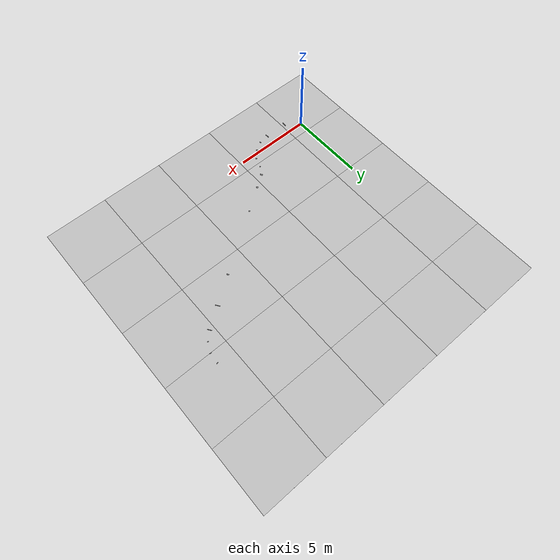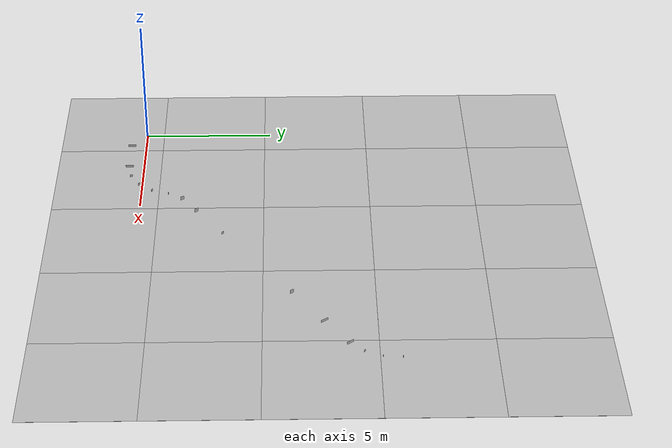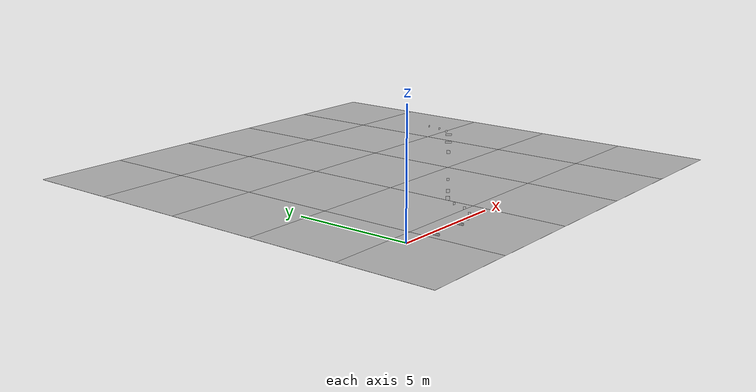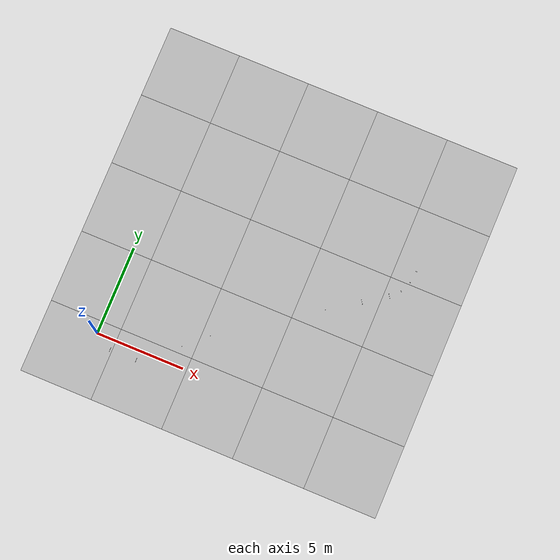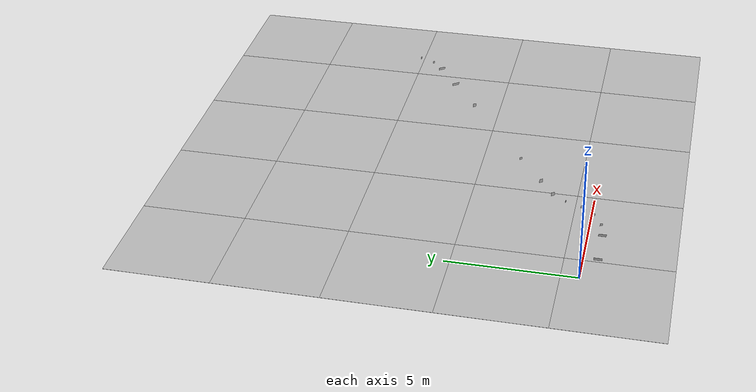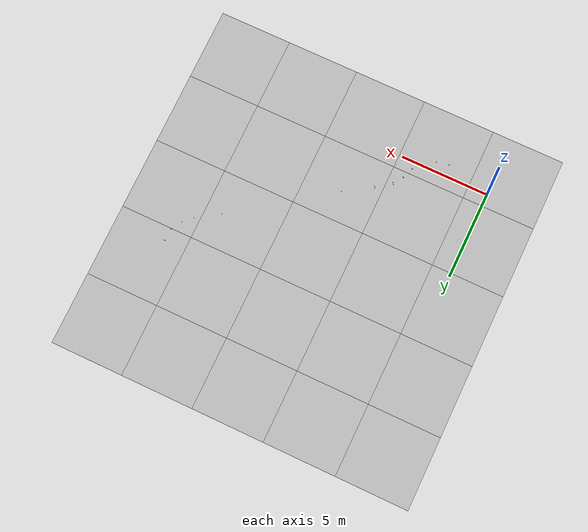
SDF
<sdf version='1.6'><world name='default'>
    <light name='sun_light' type='directional'>
      <pose frame=''>0 0 10 0 -0 0</pose>
      <diffuse>0.5 0.5 0.5 1</diffuse>
      <specular>0.1 0.1 0.1 1</specular>
      <direction>0.1 0.1 -0.9</direction>
      <attenuation>
        <range>20</range>
        <constant>0.5</constant>
        <linear>0.01</linear>
        <quadratic>0.001</quadratic>
      </attenuation>
      <cast_shadows>1</cast_shadows>
    </light>

    <model name='Tile/0-0'>
      <static>1</static>
      <link name='link'>
        <collision name='collision'>
          <geometry>
            <plane>
              <normal>0 0 1</normal>
              <size>4.096 4.096</size>
            </plane>
          </geometry>
          <surface>
            <friction>
              <ode>
                <mu>100</mu>
                <mu2>50</mu2>
              </ode>
              <torsional>
                <ode/>
              </torsional>
            </friction>
            <contact>
              <ode/>
            </contact>
            <bounce/>
          </surface>
          <max_contacts>10</max_contacts>
        </collision>
        <visual name='visual'>
          <cast_shadows>0</cast_shadows>
          <geometry>
            <plane>
              <normal>0 0 1</normal>
              <size>4.096 4.096</size>
            </plane>
          </geometry>
          <material>
            <script>
              <uri>file://materials/scripts</uri>
              <uri>file://materials/textures</uri>
              <name>Tile/d2a0822d2df9434b2a10c1df4b51959f07967b7722c4dc5c94304e16f4e1de29</name>
            </script>
          </material>
        </visual>
        <self_collide>0</self_collide>
        <enable_wind>0</enable_wind>
        <kinematic>0</kinematic>
      </link>
      <pose frame=''>-0.952 -1.3519999999999999 0 0 -0 0</pose>
    </model>

    <model name='Tile/0-1'>
      <static>1</static>
      <link name='link'>
        <collision name='collision'>
          <geometry>
            <plane>
              <normal>0 0 1</normal>
              <size>4.096 4.096</size>
            </plane>
          </geometry>
          <surface>
            <friction>
              <ode>
                <mu>100</mu>
                <mu2>50</mu2>
              </ode>
              <torsional>
                <ode/>
              </torsional>
            </friction>
            <contact>
              <ode/>
            </contact>
            <bounce/>
          </surface>
          <max_contacts>10</max_contacts>
        </collision>
        <visual name='visual'>
          <cast_shadows>0</cast_shadows>
          <geometry>
            <plane>
              <normal>0 0 1</normal>
              <size>4.096 4.096</size>
            </plane>
          </geometry>
          <material>
            <script>
              <uri>file://materials/scripts</uri>
              <uri>file://materials/textures</uri>
              <name>Tile/5eab350b8220ac9944dbdfa4ac3288c7c17e24c3bf5df0dfcf6173d64dae00a1</name>
            </script>
          </material>
        </visual>
        <self_collide>0</self_collide>
        <enable_wind>0</enable_wind>
        <kinematic>0</kinematic>
      </link>
      <pose frame=''>-0.952 2.744 0 0 -0 0</pose>
    </model>

    <model name='Tile/0-2'>
      <static>1</static>
      <link name='link'>
        <collision name='collision'>
          <geometry>
            <plane>
              <normal>0 0 1</normal>
              <size>4.096 4.096</size>
            </plane>
          </geometry>
          <surface>
            <friction>
              <ode>
                <mu>100</mu>
                <mu2>50</mu2>
              </ode>
              <torsional>
                <ode/>
              </torsional>
            </friction>
            <contact>
              <ode/>
            </contact>
            <bounce/>
          </surface>
          <max_contacts>10</max_contacts>
        </collision>
        <visual name='visual'>
          <cast_shadows>0</cast_shadows>
          <geometry>
            <plane>
              <normal>0 0 1</normal>
              <size>4.096 4.096</size>
            </plane>
          </geometry>
          <material>
            <script>
              <uri>file://materials/scripts</uri>
              <uri>file://materials/textures</uri>
              <name>Tile/5eab350b8220ac9944dbdfa4ac3288c7c17e24c3bf5df0dfcf6173d64dae00a1</name>
            </script>
          </material>
        </visual>
        <self_collide>0</self_collide>
        <enable_wind>0</enable_wind>
        <kinematic>0</kinematic>
      </link>
      <pose frame=''>-0.952 6.84 0 0 -0 0</pose>
    </model>

    <model name='Tile/0-3'>
      <static>1</static>
      <link name='link'>
        <collision name='collision'>
          <geometry>
            <plane>
              <normal>0 0 1</normal>
              <size>4.096 4.096</size>
            </plane>
          </geometry>
          <surface>
            <friction>
              <ode>
                <mu>100</mu>
                <mu2>50</mu2>
              </ode>
              <torsional>
                <ode/>
              </torsional>
            </friction>
            <contact>
              <ode/>
            </contact>
            <bounce/>
          </surface>
          <max_contacts>10</max_contacts>
        </collision>
        <visual name='visual'>
          <cast_shadows>0</cast_shadows>
          <geometry>
            <plane>
              <normal>0 0 1</normal>
              <size>4.096 4.096</size>
            </plane>
          </geometry>
          <material>
            <script>
              <uri>file://materials/scripts</uri>
              <uri>file://materials/textures</uri>
              <name>Tile/5eab350b8220ac9944dbdfa4ac3288c7c17e24c3bf5df0dfcf6173d64dae00a1</name>
            </script>
          </material>
        </visual>
        <self_collide>0</self_collide>
        <enable_wind>0</enable_wind>
        <kinematic>0</kinematic>
      </link>
      <pose frame=''>-0.952 10.936 0 0 -0 0</pose>
    </model>

    <model name='Tile/0-4'>
      <static>1</static>
      <link name='link'>
        <collision name='collision'>
          <geometry>
            <plane>
              <normal>0 0 1</normal>
              <size>4.096 4.096</size>
            </plane>
          </geometry>
          <surface>
            <friction>
              <ode>
                <mu>100</mu>
                <mu2>50</mu2>
              </ode>
              <torsional>
                <ode/>
              </torsional>
            </friction>
            <contact>
              <ode/>
            </contact>
            <bounce/>
          </surface>
          <max_contacts>10</max_contacts>
        </collision>
        <visual name='visual'>
          <cast_shadows>0</cast_shadows>
          <geometry>
            <plane>
              <normal>0 0 1</normal>
              <size>4.096 4.096</size>
            </plane>
          </geometry>
          <material>
            <script>
              <uri>file://materials/scripts</uri>
              <uri>file://materials/textures</uri>
              <name>Tile/5eab350b8220ac9944dbdfa4ac3288c7c17e24c3bf5df0dfcf6173d64dae00a1</name>
            </script>
          </material>
        </visual>
        <self_collide>0</self_collide>
        <enable_wind>0</enable_wind>
        <kinematic>0</kinematic>
      </link>
      <pose frame=''>-0.952 15.031999999999998 0 0 -0 0</pose>
    </model>

    <model name='Tile/1-0'>
      <static>1</static>
      <link name='link'>
        <collision name='collision'>
          <geometry>
            <plane>
              <normal>0 0 1</normal>
              <size>4.096 4.096</size>
            </plane>
          </geometry>
          <surface>
            <friction>
              <ode>
                <mu>100</mu>
                <mu2>50</mu2>
              </ode>
              <torsional>
                <ode/>
              </torsional>
            </friction>
            <contact>
              <ode/>
            </contact>
            <bounce/>
          </surface>
          <max_contacts>10</max_contacts>
        </collision>
        <visual name='visual'>
          <cast_shadows>0</cast_shadows>
          <geometry>
            <plane>
              <normal>0 0 1</normal>
              <size>4.096 4.096</size>
            </plane>
          </geometry>
          <material>
            <script>
              <uri>file://materials/scripts</uri>
              <uri>file://materials/textures</uri>
              <name>Tile/eee40ccea9311317126f079acab8a58f75d18f4e68f1ac2bab7b07feca064cc9</name>
            </script>
          </material>
        </visual>
        <self_collide>0</self_collide>
        <enable_wind>0</enable_wind>
        <kinematic>0</kinematic>
      </link>
      <pose frame=''>3.144 -1.3519999999999999 0 0 -0 0</pose>
    </model>

    <model name='Tile/1-1'>
      <static>1</static>
      <link name='link'>
        <collision name='collision'>
          <geometry>
            <plane>
              <normal>0 0 1</normal>
              <size>4.096 4.096</size>
            </plane>
          </geometry>
          <surface>
            <friction>
              <ode>
                <mu>100</mu>
                <mu2>50</mu2>
              </ode>
              <torsional>
                <ode/>
              </torsional>
            </friction>
            <contact>
              <ode/>
            </contact>
            <bounce/>
          </surface>
          <max_contacts>10</max_contacts>
        </collision>
        <visual name='visual'>
          <cast_shadows>0</cast_shadows>
          <geometry>
            <plane>
              <normal>0 0 1</normal>
              <size>4.096 4.096</size>
            </plane>
          </geometry>
          <material>
            <script>
              <uri>file://materials/scripts</uri>
              <uri>file://materials/textures</uri>
              <name>Tile/a1f1a3437d4001d93257ce38ab1ec9c10e90d7fdd6efb486b257afc91075a8ee</name>
            </script>
          </material>
        </visual>
        <self_collide>0</self_collide>
        <enable_wind>0</enable_wind>
        <kinematic>0</kinematic>
      </link>
      <pose frame=''>3.144 2.744 0 0 -0 0</pose>
    </model>

    <model name='Tile/1-2'>
      <static>1</static>
      <link name='link'>
        <collision name='collision'>
          <geometry>
            <plane>
              <normal>0 0 1</normal>
              <size>4.096 4.096</size>
            </plane>
          </geometry>
          <surface>
            <friction>
              <ode>
                <mu>100</mu>
                <mu2>50</mu2>
              </ode>
              <torsional>
                <ode/>
              </torsional>
            </friction>
            <contact>
              <ode/>
            </contact>
            <bounce/>
          </surface>
          <max_contacts>10</max_contacts>
        </collision>
        <visual name='visual'>
          <cast_shadows>0</cast_shadows>
          <geometry>
            <plane>
              <normal>0 0 1</normal>
              <size>4.096 4.096</size>
            </plane>
          </geometry>
          <material>
            <script>
              <uri>file://materials/scripts</uri>
              <uri>file://materials/textures</uri>
              <name>Tile/5eab350b8220ac9944dbdfa4ac3288c7c17e24c3bf5df0dfcf6173d64dae00a1</name>
            </script>
          </material>
        </visual>
        <self_collide>0</self_collide>
        <enable_wind>0</enable_wind>
        <kinematic>0</kinematic>
      </link>
      <pose frame=''>3.144 6.84 0 0 -0 0</pose>
    </model>

    <model name='Tile/1-3'>
      <static>1</static>
      <link name='link'>
        <collision name='collision'>
          <geometry>
            <plane>
              <normal>0 0 1</normal>
              <size>4.096 4.096</size>
            </plane>
          </geometry>
          <surface>
            <friction>
              <ode>
                <mu>100</mu>
                <mu2>50</mu2>
              </ode>
              <torsional>
                <ode/>
              </torsional>
            </friction>
            <contact>
              <ode/>
            </contact>
            <bounce/>
          </surface>
          <max_contacts>10</max_contacts>
        </collision>
        <visual name='visual'>
          <cast_shadows>0</cast_shadows>
          <geometry>
            <plane>
              <normal>0 0 1</normal>
              <size>4.096 4.096</size>
            </plane>
          </geometry>
          <material>
            <script>
              <uri>file://materials/scripts</uri>
              <uri>file://materials/textures</uri>
              <name>Tile/5eab350b8220ac9944dbdfa4ac3288c7c17e24c3bf5df0dfcf6173d64dae00a1</name>
            </script>
          </material>
        </visual>
        <self_collide>0</self_collide>
        <enable_wind>0</enable_wind>
        <kinematic>0</kinematic>
      </link>
      <pose frame=''>3.144 10.936 0 0 -0 0</pose>
    </model>

    <model name='Tile/1-4'>
      <static>1</static>
      <link name='link'>
        <collision name='collision'>
          <geometry>
            <plane>
              <normal>0 0 1</normal>
              <size>4.096 4.096</size>
            </plane>
          </geometry>
          <surface>
            <friction>
              <ode>
                <mu>100</mu>
                <mu2>50</mu2>
              </ode>
              <torsional>
                <ode/>
              </torsional>
            </friction>
            <contact>
              <ode/>
            </contact>
            <bounce/>
          </surface>
          <max_contacts>10</max_contacts>
        </collision>
        <visual name='visual'>
          <cast_shadows>0</cast_shadows>
          <geometry>
            <plane>
              <normal>0 0 1</normal>
              <size>4.096 4.096</size>
            </plane>
          </geometry>
          <material>
            <script>
              <uri>file://materials/scripts</uri>
              <uri>file://materials/textures</uri>
              <name>Tile/5eab350b8220ac9944dbdfa4ac3288c7c17e24c3bf5df0dfcf6173d64dae00a1</name>
            </script>
          </material>
        </visual>
        <self_collide>0</self_collide>
        <enable_wind>0</enable_wind>
        <kinematic>0</kinematic>
      </link>
      <pose frame=''>3.144 15.031999999999998 0 0 -0 0</pose>
    </model>

    <model name='Tile/2-0'>
      <static>1</static>
      <link name='link'>
        <collision name='collision'>
          <geometry>
            <plane>
              <normal>0 0 1</normal>
              <size>4.096 4.096</size>
            </plane>
          </geometry>
          <surface>
            <friction>
              <ode>
                <mu>100</mu>
                <mu2>50</mu2>
              </ode>
              <torsional>
                <ode/>
              </torsional>
            </friction>
            <contact>
              <ode/>
            </contact>
            <bounce/>
          </surface>
          <max_contacts>10</max_contacts>
        </collision>
        <visual name='visual'>
          <cast_shadows>0</cast_shadows>
          <geometry>
            <plane>
              <normal>0 0 1</normal>
              <size>4.096 4.096</size>
            </plane>
          </geometry>
          <material>
            <script>
              <uri>file://materials/scripts</uri>
              <uri>file://materials/textures</uri>
              <name>Tile/5eab350b8220ac9944dbdfa4ac3288c7c17e24c3bf5df0dfcf6173d64dae00a1</name>
            </script>
          </material>
        </visual>
        <self_collide>0</self_collide>
        <enable_wind>0</enable_wind>
        <kinematic>0</kinematic>
      </link>
      <pose frame=''>7.24 -1.3519999999999999 0 0 -0 0</pose>
    </model>

    <model name='Tile/2-1'>
      <static>1</static>
      <link name='link'>
        <collision name='collision'>
          <geometry>
            <plane>
              <normal>0 0 1</normal>
              <size>4.096 4.096</size>
            </plane>
          </geometry>
          <surface>
            <friction>
              <ode>
                <mu>100</mu>
                <mu2>50</mu2>
              </ode>
              <torsional>
                <ode/>
              </torsional>
            </friction>
            <contact>
              <ode/>
            </contact>
            <bounce/>
          </surface>
          <max_contacts>10</max_contacts>
        </collision>
        <visual name='visual'>
          <cast_shadows>0</cast_shadows>
          <geometry>
            <plane>
              <normal>0 0 1</normal>
              <size>4.096 4.096</size>
            </plane>
          </geometry>
          <material>
            <script>
              <uri>file://materials/scripts</uri>
              <uri>file://materials/textures</uri>
              <name>Tile/c438651c7a96c9e89843c914973748acd16b1fba666bc4dcf752a6d482b22294</name>
            </script>
          </material>
        </visual>
        <self_collide>0</self_collide>
        <enable_wind>0</enable_wind>
        <kinematic>0</kinematic>
      </link>
      <pose frame=''>7.24 2.744 0 0 -0 0</pose>
    </model>

    <model name='Tile/2-2'>
      <static>1</static>
      <link name='link'>
        <collision name='collision'>
          <geometry>
            <plane>
              <normal>0 0 1</normal>
              <size>4.096 4.096</size>
            </plane>
          </geometry>
          <surface>
            <friction>
              <ode>
                <mu>100</mu>
                <mu2>50</mu2>
              </ode>
              <torsional>
                <ode/>
              </torsional>
            </friction>
            <contact>
              <ode/>
            </contact>
            <bounce/>
          </surface>
          <max_contacts>10</max_contacts>
        </collision>
        <visual name='visual'>
          <cast_shadows>0</cast_shadows>
          <geometry>
            <plane>
              <normal>0 0 1</normal>
              <size>4.096 4.096</size>
            </plane>
          </geometry>
          <material>
            <script>
              <uri>file://materials/scripts</uri>
              <uri>file://materials/textures</uri>
              <name>Tile/5fa640ad129e8e4949fe26d532acd445ff534ec2188ccea17ad2d094ef335962</name>
            </script>
          </material>
        </visual>
        <self_collide>0</self_collide>
        <enable_wind>0</enable_wind>
        <kinematic>0</kinematic>
      </link>
      <pose frame=''>7.24 6.84 0 0 -0 0</pose>
    </model>

    <model name='Tile/2-3'>
      <static>1</static>
      <link name='link'>
        <collision name='collision'>
          <geometry>
            <plane>
              <normal>0 0 1</normal>
              <size>4.096 4.096</size>
            </plane>
          </geometry>
          <surface>
            <friction>
              <ode>
                <mu>100</mu>
                <mu2>50</mu2>
              </ode>
              <torsional>
                <ode/>
              </torsional>
            </friction>
            <contact>
              <ode/>
            </contact>
            <bounce/>
          </surface>
          <max_contacts>10</max_contacts>
        </collision>
        <visual name='visual'>
          <cast_shadows>0</cast_shadows>
          <geometry>
            <plane>
              <normal>0 0 1</normal>
              <size>4.096 4.096</size>
            </plane>
          </geometry>
          <material>
            <script>
              <uri>file://materials/scripts</uri>
              <uri>file://materials/textures</uri>
              <name>Tile/5eab350b8220ac9944dbdfa4ac3288c7c17e24c3bf5df0dfcf6173d64dae00a1</name>
            </script>
          </material>
        </visual>
        <self_collide>0</self_collide>
        <enable_wind>0</enable_wind>
        <kinematic>0</kinematic>
      </link>
      <pose frame=''>7.24 10.936 0 0 -0 0</pose>
    </model>

    <model name='Tile/2-4'>
      <static>1</static>
      <link name='link'>
        <collision name='collision'>
          <geometry>
            <plane>
              <normal>0 0 1</normal>
              <size>4.096 4.096</size>
            </plane>
          </geometry>
          <surface>
            <friction>
              <ode>
                <mu>100</mu>
                <mu2>50</mu2>
              </ode>
              <torsional>
                <ode/>
              </torsional>
            </friction>
            <contact>
              <ode/>
            </contact>
            <bounce/>
          </surface>
          <max_contacts>10</max_contacts>
        </collision>
        <visual name='visual'>
          <cast_shadows>0</cast_shadows>
          <geometry>
            <plane>
              <normal>0 0 1</normal>
              <size>4.096 4.096</size>
            </plane>
          </geometry>
          <material>
            <script>
              <uri>file://materials/scripts</uri>
              <uri>file://materials/textures</uri>
              <name>Tile/5eab350b8220ac9944dbdfa4ac3288c7c17e24c3bf5df0dfcf6173d64dae00a1</name>
            </script>
          </material>
        </visual>
        <self_collide>0</self_collide>
        <enable_wind>0</enable_wind>
        <kinematic>0</kinematic>
      </link>
      <pose frame=''>7.24 15.031999999999998 0 0 -0 0</pose>
    </model>

    <model name='Tile/3-0'>
      <static>1</static>
      <link name='link'>
        <collision name='collision'>
          <geometry>
            <plane>
              <normal>0 0 1</normal>
              <size>4.096 4.096</size>
            </plane>
          </geometry>
          <surface>
            <friction>
              <ode>
                <mu>100</mu>
                <mu2>50</mu2>
              </ode>
              <torsional>
                <ode/>
              </torsional>
            </friction>
            <contact>
              <ode/>
            </contact>
            <bounce/>
          </surface>
          <max_contacts>10</max_contacts>
        </collision>
        <visual name='visual'>
          <cast_shadows>0</cast_shadows>
          <geometry>
            <plane>
              <normal>0 0 1</normal>
              <size>4.096 4.096</size>
            </plane>
          </geometry>
          <material>
            <script>
              <uri>file://materials/scripts</uri>
              <uri>file://materials/textures</uri>
              <name>Tile/5eab350b8220ac9944dbdfa4ac3288c7c17e24c3bf5df0dfcf6173d64dae00a1</name>
            </script>
          </material>
        </visual>
        <self_collide>0</self_collide>
        <enable_wind>0</enable_wind>
        <kinematic>0</kinematic>
      </link>
      <pose frame=''>11.336 -1.3519999999999999 0 0 -0 0</pose>
    </model>

    <model name='Tile/3-1'>
      <static>1</static>
      <link name='link'>
        <collision name='collision'>
          <geometry>
            <plane>
              <normal>0 0 1</normal>
              <size>4.096 4.096</size>
            </plane>
          </geometry>
          <surface>
            <friction>
              <ode>
                <mu>100</mu>
                <mu2>50</mu2>
              </ode>
              <torsional>
                <ode/>
              </torsional>
            </friction>
            <contact>
              <ode/>
            </contact>
            <bounce/>
          </surface>
          <max_contacts>10</max_contacts>
        </collision>
        <visual name='visual'>
          <cast_shadows>0</cast_shadows>
          <geometry>
            <plane>
              <normal>0 0 1</normal>
              <size>4.096 4.096</size>
            </plane>
          </geometry>
          <material>
            <script>
              <uri>file://materials/scripts</uri>
              <uri>file://materials/textures</uri>
              <name>Tile/5eab350b8220ac9944dbdfa4ac3288c7c17e24c3bf5df0dfcf6173d64dae00a1</name>
            </script>
          </material>
        </visual>
        <self_collide>0</self_collide>
        <enable_wind>0</enable_wind>
        <kinematic>0</kinematic>
      </link>
      <pose frame=''>11.336 2.744 0 0 -0 0</pose>
    </model>

    <model name='Tile/3-2'>
      <static>1</static>
      <link name='link'>
        <collision name='collision'>
          <geometry>
            <plane>
              <normal>0 0 1</normal>
              <size>4.096 4.096</size>
            </plane>
          </geometry>
          <surface>
            <friction>
              <ode>
                <mu>100</mu>
                <mu2>50</mu2>
              </ode>
              <torsional>
                <ode/>
              </torsional>
            </friction>
            <contact>
              <ode/>
            </contact>
            <bounce/>
          </surface>
          <max_contacts>10</max_contacts>
        </collision>
        <visual name='visual'>
          <cast_shadows>0</cast_shadows>
          <geometry>
            <plane>
              <normal>0 0 1</normal>
              <size>4.096 4.096</size>
            </plane>
          </geometry>
          <material>
            <script>
              <uri>file://materials/scripts</uri>
              <uri>file://materials/textures</uri>
              <name>Tile/035a4a62fe5b03cb4a5bea980fb850bf9fa1563508dabf681c6b0df8fe64a107</name>
            </script>
          </material>
        </visual>
        <self_collide>0</self_collide>
        <enable_wind>0</enable_wind>
        <kinematic>0</kinematic>
      </link>
      <pose frame=''>11.336 6.84 0 0 -0 0</pose>
    </model>

    <model name='Tile/3-3'>
      <static>1</static>
      <link name='link'>
        <collision name='collision'>
          <geometry>
            <plane>
              <normal>0 0 1</normal>
              <size>4.096 4.096</size>
            </plane>
          </geometry>
          <surface>
            <friction>
              <ode>
                <mu>100</mu>
                <mu2>50</mu2>
              </ode>
              <torsional>
                <ode/>
              </torsional>
            </friction>
            <contact>
              <ode/>
            </contact>
            <bounce/>
          </surface>
          <max_contacts>10</max_contacts>
        </collision>
        <visual name='visual'>
          <cast_shadows>0</cast_shadows>
          <geometry>
            <plane>
              <normal>0 0 1</normal>
              <size>4.096 4.096</size>
            </plane>
          </geometry>
          <material>
            <script>
              <uri>file://materials/scripts</uri>
              <uri>file://materials/textures</uri>
              <name>Tile/5eab350b8220ac9944dbdfa4ac3288c7c17e24c3bf5df0dfcf6173d64dae00a1</name>
            </script>
          </material>
        </visual>
        <self_collide>0</self_collide>
        <enable_wind>0</enable_wind>
        <kinematic>0</kinematic>
      </link>
      <pose frame=''>11.336 10.936 0 0 -0 0</pose>
    </model>

    <model name='Tile/3-4'>
      <static>1</static>
      <link name='link'>
        <collision name='collision'>
          <geometry>
            <plane>
              <normal>0 0 1</normal>
              <size>4.096 4.096</size>
            </plane>
          </geometry>
          <surface>
            <friction>
              <ode>
                <mu>100</mu>
                <mu2>50</mu2>
              </ode>
              <torsional>
                <ode/>
              </torsional>
            </friction>
            <contact>
              <ode/>
            </contact>
            <bounce/>
          </surface>
          <max_contacts>10</max_contacts>
        </collision>
        <visual name='visual'>
          <cast_shadows>0</cast_shadows>
          <geometry>
            <plane>
              <normal>0 0 1</normal>
              <size>4.096 4.096</size>
            </plane>
          </geometry>
          <material>
            <script>
              <uri>file://materials/scripts</uri>
              <uri>file://materials/textures</uri>
              <name>Tile/5eab350b8220ac9944dbdfa4ac3288c7c17e24c3bf5df0dfcf6173d64dae00a1</name>
            </script>
          </material>
        </visual>
        <self_collide>0</self_collide>
        <enable_wind>0</enable_wind>
        <kinematic>0</kinematic>
      </link>
      <pose frame=''>11.336 15.031999999999998 0 0 -0 0</pose>
    </model>

    <model name='Tile/4-0'>
      <static>1</static>
      <link name='link'>
        <collision name='collision'>
          <geometry>
            <plane>
              <normal>0 0 1</normal>
              <size>4.096 4.096</size>
            </plane>
          </geometry>
          <surface>
            <friction>
              <ode>
                <mu>100</mu>
                <mu2>50</mu2>
              </ode>
              <torsional>
                <ode/>
              </torsional>
            </friction>
            <contact>
              <ode/>
            </contact>
            <bounce/>
          </surface>
          <max_contacts>10</max_contacts>
        </collision>
        <visual name='visual'>
          <cast_shadows>0</cast_shadows>
          <geometry>
            <plane>
              <normal>0 0 1</normal>
              <size>4.096 4.096</size>
            </plane>
          </geometry>
          <material>
            <script>
              <uri>file://materials/scripts</uri>
              <uri>file://materials/textures</uri>
              <name>Tile/5eab350b8220ac9944dbdfa4ac3288c7c17e24c3bf5df0dfcf6173d64dae00a1</name>
            </script>
          </material>
        </visual>
        <self_collide>0</self_collide>
        <enable_wind>0</enable_wind>
        <kinematic>0</kinematic>
      </link>
      <pose frame=''>15.431999999999999 -1.3519999999999999 0 0 -0 0</pose>
    </model>

    <model name='Tile/4-1'>
      <static>1</static>
      <link name='link'>
        <collision name='collision'>
          <geometry>
            <plane>
              <normal>0 0 1</normal>
              <size>4.096 4.096</size>
            </plane>
          </geometry>
          <surface>
            <friction>
              <ode>
                <mu>100</mu>
                <mu2>50</mu2>
              </ode>
              <torsional>
                <ode/>
              </torsional>
            </friction>
            <contact>
              <ode/>
            </contact>
            <bounce/>
          </surface>
          <max_contacts>10</max_contacts>
        </collision>
        <visual name='visual'>
          <cast_shadows>0</cast_shadows>
          <geometry>
            <plane>
              <normal>0 0 1</normal>
              <size>4.096 4.096</size>
            </plane>
          </geometry>
          <material>
            <script>
              <uri>file://materials/scripts</uri>
              <uri>file://materials/textures</uri>
              <name>Tile/5eab350b8220ac9944dbdfa4ac3288c7c17e24c3bf5df0dfcf6173d64dae00a1</name>
            </script>
          </material>
        </visual>
        <self_collide>0</self_collide>
        <enable_wind>0</enable_wind>
        <kinematic>0</kinematic>
      </link>
      <pose frame=''>15.431999999999999 2.744 0 0 -0 0</pose>
    </model>

    <model name='Tile/4-2'>
      <static>1</static>
      <link name='link'>
        <collision name='collision'>
          <geometry>
            <plane>
              <normal>0 0 1</normal>
              <size>4.096 4.096</size>
            </plane>
          </geometry>
          <surface>
            <friction>
              <ode>
                <mu>100</mu>
                <mu2>50</mu2>
              </ode>
              <torsional>
                <ode/>
              </torsional>
            </friction>
            <contact>
              <ode/>
            </contact>
            <bounce/>
          </surface>
          <max_contacts>10</max_contacts>
        </collision>
        <visual name='visual'>
          <cast_shadows>0</cast_shadows>
          <geometry>
            <plane>
              <normal>0 0 1</normal>
              <size>4.096 4.096</size>
            </plane>
          </geometry>
          <material>
            <script>
              <uri>file://materials/scripts</uri>
              <uri>file://materials/textures</uri>
              <name>Tile/3b120e6d7b4ba06f37708affd5ce6432361e33357a6825d36f6bb3f9913bc151</name>
            </script>
          </material>
        </visual>
        <self_collide>0</self_collide>
        <enable_wind>0</enable_wind>
        <kinematic>0</kinematic>
      </link>
      <pose frame=''>15.431999999999999 6.84 0 0 -0 0</pose>
    </model>

    <model name='Tile/4-3'>
      <static>1</static>
      <link name='link'>
        <collision name='collision'>
          <geometry>
            <plane>
              <normal>0 0 1</normal>
              <size>4.096 4.096</size>
            </plane>
          </geometry>
          <surface>
            <friction>
              <ode>
                <mu>100</mu>
                <mu2>50</mu2>
              </ode>
              <torsional>
                <ode/>
              </torsional>
            </friction>
            <contact>
              <ode/>
            </contact>
            <bounce/>
          </surface>
          <max_contacts>10</max_contacts>
        </collision>
        <visual name='visual'>
          <cast_shadows>0</cast_shadows>
          <geometry>
            <plane>
              <normal>0 0 1</normal>
              <size>4.096 4.096</size>
            </plane>
          </geometry>
          <material>
            <script>
              <uri>file://materials/scripts</uri>
              <uri>file://materials/textures</uri>
              <name>Tile/78331d41c241b16be326ee5125b3b466bff411f426e3ba916b766cbf40a50a2c</name>
            </script>
          </material>
        </visual>
        <self_collide>0</self_collide>
        <enable_wind>0</enable_wind>
        <kinematic>0</kinematic>
      </link>
      <pose frame=''>15.431999999999999 10.936 0 0 -0 0</pose>
    </model>

    <model name='Tile/4-4'>
      <static>1</static>
      <link name='link'>
        <collision name='collision'>
          <geometry>
            <plane>
              <normal>0 0 1</normal>
              <size>4.096 4.096</size>
            </plane>
          </geometry>
          <surface>
            <friction>
              <ode>
                <mu>100</mu>
                <mu2>50</mu2>
              </ode>
              <torsional>
                <ode/>
              </torsional>
            </friction>
            <contact>
              <ode/>
            </contact>
            <bounce/>
          </surface>
          <max_contacts>10</max_contacts>
        </collision>
        <visual name='visual'>
          <cast_shadows>0</cast_shadows>
          <geometry>
            <plane>
              <normal>0 0 1</normal>
              <size>4.096 4.096</size>
            </plane>
          </geometry>
          <material>
            <script>
              <uri>file://materials/scripts</uri>
              <uri>file://materials/textures</uri>
              <name>Tile/5eab350b8220ac9944dbdfa4ac3288c7c17e24c3bf5df0dfcf6173d64dae00a1</name>
            </script>
          </material>
        </visual>
        <self_collide>0</self_collide>
        <enable_wind>0</enable_wind>
        <kinematic>0</kinematic>
      </link>
      <pose frame=''>15.431999999999999 15.031999999999998 0 0 -0 0</pose>
    </model>

    <model name='Sign/-5'>
      <static>1</static>
      <link name='link'>
        <visual name='visual'>
          <cast_shadows>0</cast_shadows>
          <geometry>
            <plane>
              <normal>0 0 1</normal>
              <size>0.3 0.1</size>
            </plane>
          </geometry>
          <material>
            <script>
              <uri>file://materials/scripts</uri>
              <uri>file://materials/textures</uri>
              <name>Sign/stvo-625-11</name>
            </script>
          </material>
        </visual>
        <self_collide>0</self_collide>
        <enable_wind>0</enable_wind>
        <kinematic>0</kinematic>
      </link>
      <pose frame=''>1.005 -0.55 0.2 1.5707963267948966 0 4.71238898038469</pose>
    </model>

    <model name='Sign/-10'>
      <static>1</static>
      <link name='link'>
        <visual name='visual'>
          <cast_shadows>0</cast_shadows>
          <geometry>
            <plane>
              <normal>0 0 1</normal>
              <size>0.3 0.1</size>
            </plane>
          </geometry>
          <material>
            <script>
              <uri>file://materials/scripts</uri>
              <uri>file://materials/textures</uri>
              <name>Sign/stvo-625-11</name>
            </script>
          </material>
        </visual>
        <self_collide>0</self_collide>
        <enable_wind>0</enable_wind>
        <kinematic>0</kinematic>
      </link>
      <pose frame=''>2.5149999999999997 -0.55 0.2 1.5707963267948966 0 4.71238898038469</pose>
    </model>

    <model name='Sign/-15'>
      <static>1</static>
      <link name='link'>
        <visual name='visual'>
          <cast_shadows>0</cast_shadows>
          <geometry>
            <plane>
              <normal>0 0 1</normal>
              <size>0.1 0.1</size>
            </plane>
          </geometry>
          <material>
            <script>
              <uri>file://materials/scripts</uri>
              <uri>file://materials/textures</uri>
              <name>Sign/stvo-625-10</name>
            </script>
          </material>
        </visual>
        <self_collide>0</self_collide>
        <enable_wind>0</enable_wind>
        <kinematic>0</kinematic>
      </link>
      <pose frame=''>3.1916377425889833 -0.43069050981589296 0.2 1.5707963267948966 0 5.061454830783555</pose>
    </model>

    <model name='Sign/-20'>
      <static>1</static>
      <link name='link'>
        <visual name='visual'>
          <cast_shadows>0</cast_shadows>
          <geometry>
            <plane>
              <normal>0 0 1</normal>
              <size>0.1 0.1</size>
            </plane>
          </geometry>
          <material>
            <script>
              <uri>file://materials/scripts</uri>
              <uri>file://materials/textures</uri>
              <name>Sign/stvo-625-10</name>
            </script>
          </material>
        </visual>
        <self_collide>0</self_collide>
        <enable_wind>0</enable_wind>
        <kinematic>0</kinematic>
      </link>
      <pose frame=''>3.7866629873122055 -0.08715252460031775 0.2 1.5707963267948966 0 5.410520681182422</pose>
    </model>

    <model name='Sign/-25'>
      <static>1</static>
      <link name='link'>
        <visual name='visual'>
          <cast_shadows>0</cast_shadows>
          <geometry>
            <plane>
              <normal>0 0 1</normal>
              <size>0.1 0.1</size>
            </plane>
          </geometry>
          <material>
            <script>
              <uri>file://materials/scripts</uri>
              <uri>file://materials/textures</uri>
              <name>Sign/stvo-625-10</name>
            </script>
          </material>
        </visual>
        <self_collide>0</self_collide>
        <enable_wind>0</enable_wind>
        <kinematic>0</kinematic>
      </link>
      <pose frame=''>4.228306908018705 0.4391782045490447 0.2 1.5707963267948966 0 5.759586531581288</pose>
    </model>

    <model name='Sign/-30'>
      <static>1</static>
      <link name='link'>
        <visual name='visual'>
          <cast_shadows>0</cast_shadows>
          <geometry>
            <plane>
              <normal>0 0 1</normal>
              <size>0.1 0.1</size>
            </plane>
          </geometry>
          <material>
            <script>
              <uri>file://materials/scripts</uri>
              <uri>file://materials/textures</uri>
              <name>Sign/stvo-625-10</name>
            </script>
          </material>
        </visual>
        <self_collide>0</self_collide>
        <enable_wind>0</enable_wind>
        <kinematic>0</kinematic>
      </link>
      <pose frame=''>4.463300729901189 1.0848184238825138 0.2 1.5707963267948966 0 6.1086523819801535</pose>
    </model>

    <model name='Sign/-35'>
      <static>1</static>
      <link name='link'>
        <visual name='visual'>
          <cast_shadows>0</cast_shadows>
          <geometry>
            <plane>
              <normal>0 0 1</normal>
              <size>0.15 0.15</size>
            </plane>
          </geometry>
          <material>
            <script>
              <uri>file://materials/scripts</uri>
              <uri>file://materials/textures</uri>
              <name>Sign/stvo-274.1</name>
            </script>
          </material>
        </visual>
        <self_collide>0</self_collide>
        <enable_wind>0</enable_wind>
        <kinematic>0</kinematic>
      </link>
      <pose frame=''>4.817811350172957 1.6412886314580826 0.22499999999999998 1.5707963267948966 0 5.323254218582705</pose>
    </model>

    <model name='Sign/-40'>
      <static>1</static>
      <link name='link'>
        <visual name='visual'>
          <cast_shadows>0</cast_shadows>
          <geometry>
            <plane>
              <normal>0 0 1</normal>
              <size>0.15 0.15</size>
            </plane>
          </geometry>
          <material>
            <script>
              <uri>file://materials/scripts</uri>
              <uri>file://materials/textures</uri>
              <name>Sign/stvo-350-10</name>
            </script>
          </material>
        </visual>
        <self_collide>0</self_collide>
        <enable_wind>0</enable_wind>
        <kinematic>0</kinematic>
      </link>
      <pose frame=''>5.645154914904839 2.220600832172639 0.22499999999999998 1.5707963267948966 0 5.323254218582705</pose>
    </model>

    <model name='Sign/-50'>
      <static>1</static>
      <link name='link'>
        <visual name='visual'>
          <cast_shadows>0</cast_shadows>
          <geometry>
            <plane>
              <normal>0 0 1</normal>
              <size>0.1 0.1</size>
            </plane>
          </geometry>
          <material>
            <script>
              <uri>file://materials/scripts</uri>
              <uri>file://materials/textures</uri>
              <name>Sign/stvo-208</name>
            </script>
          </material>
        </visual>
        <self_collide>0</self_collide>
        <enable_wind>0</enable_wind>
        <kinematic>0</kinematic>
      </link>
      <pose frame=''>7.127820115067913 3.258774181968033 0.2 1.5707963267948966 0 5.323254218582705</pose>
    </model>

    <model name='Sign/-62'>
      <static>1</static>
      <link name='link'>
        <visual name='visual'>
          <cast_shadows>0</cast_shadows>
          <geometry>
            <plane>
              <normal>0 0 1</normal>
              <size>0.15 0.15</size>
            </plane>
          </geometry>
          <material>
            <script>
              <uri>file://materials/scripts</uri>
              <uri>file://materials/textures</uri>
              <name>Sign/stvo-274.2</name>
            </script>
          </material>
        </visual>
        <self_collide>0</self_collide>
        <enable_wind>0</enable_wind>
        <kinematic>0</kinematic>
      </link>
      <pose frame=''>10.822195834811263 5.84560390991125 0.22499999999999998 1.5707963267948966 0 5.323254218582705</pose>
    </model>

    <model name='Sign/-67'>
      <static>1</static>
      <link name='link'>
        <visual name='visual'>
          <cast_shadows>0</cast_shadows>
          <geometry>
            <plane>
              <normal>0 0 1</normal>
              <size>0.3 0.1</size>
            </plane>
          </geometry>
          <material>
            <script>
              <uri>file://materials/scripts</uri>
              <uri>file://materials/textures</uri>
              <name>Sign/stvo-625-11</name>
            </script>
          </material>
        </visual>
        <self_collide>0</self_collide>
        <enable_wind>0</enable_wind>
        <kinematic>0</kinematic>
      </link>
      <pose frame=''>12.468691443832137 6.998492546976853 0.2 1.5707963267948966 0 5.323254218582705</pose>
    </model>

    <model name='Sign/-72'>
      <static>1</static>
      <link name='link'>
        <visual name='visual'>
          <cast_shadows>0</cast_shadows>
          <geometry>
            <plane>
              <normal>0 0 1</normal>
              <size>0.3 0.1</size>
            </plane>
          </geometry>
          <material>
            <script>
              <uri>file://materials/scripts</uri>
              <uri>file://materials/textures</uri>
              <name>Sign/stvo-625-11</name>
            </script>
          </material>
        </visual>
        <self_collide>0</self_collide>
        <enable_wind>0</enable_wind>
        <kinematic>0</kinematic>
      </link>
      <pose frame=''>13.705611030708514 7.864592965866932 0.2 1.5707963267948966 0 5.323254218582705</pose>
    </model>

    <model name='Sign/-77'>
      <static>1</static>
      <link name='link'>
        <visual name='visual'>
          <cast_shadows>0</cast_shadows>
          <geometry>
            <plane>
              <normal>0 0 1</normal>
              <size>0.1 0.1</size>
            </plane>
          </geometry>
          <material>
            <script>
              <uri>file://materials/scripts</uri>
              <uri>file://materials/textures</uri>
              <name>Sign/stvo-625-10</name>
            </script>
          </material>
        </visual>
        <self_collide>0</self_collide>
        <enable_wind>0</enable_wind>
        <kinematic>0</kinematic>
      </link>
      <pose frame=''>14.19144710859071 8.350429043749127 0.2 1.5707963267948966 0 5.672320068981572</pose>
    </model>

    <model name='Sign/-82'>
      <static>1</static>
      <link name='link'>
        <visual name='visual'>
          <cast_shadows>0</cast_shadows>
          <geometry>
            <plane>
              <normal>0 0 1</normal>
              <size>0.1 0.1</size>
            </plane>
          </geometry>
          <material>
            <script>
              <uri>file://materials/scripts</uri>
              <uri>file://materials/textures</uri>
              <name>Sign/stvo-625-10</name>
            </script>
          </material>
        </visual>
        <self_collide>0</self_collide>
        <enable_wind>0</enable_wind>
        <kinematic>0</kinematic>
      </link>
      <pose frame=''>14.481817960898127 8.973131346036645 0.2 1.5707963267948966 0 6.021385919380437</pose>
    </model>

    <model name='Sign/-87'>
      <static>1</static>
      <link name='link'>
        <visual name='visual'>
          <cast_shadows>0</cast_shadows>
          <geometry>
            <plane>
              <normal>0 0 1</normal>
              <size>0.1 0.1</size>
            </plane>
          </geometry>
          <material>
            <script>
              <uri>file://materials/scripts</uri>
              <uri>file://materials/textures</uri>
              <name>Sign/stvo-625-10</name>
            </script>
          </material>
        </visual>
        <self_collide>0</self_collide>
        <enable_wind>0</enable_wind>
        <kinematic>0</kinematic>
      </link>
      <pose frame=''>14.541700577425122 9.657592784966397 0.2 1.5707963267948966 0 6.370451769779303</pose>
    </model>
    </world></sdf>
